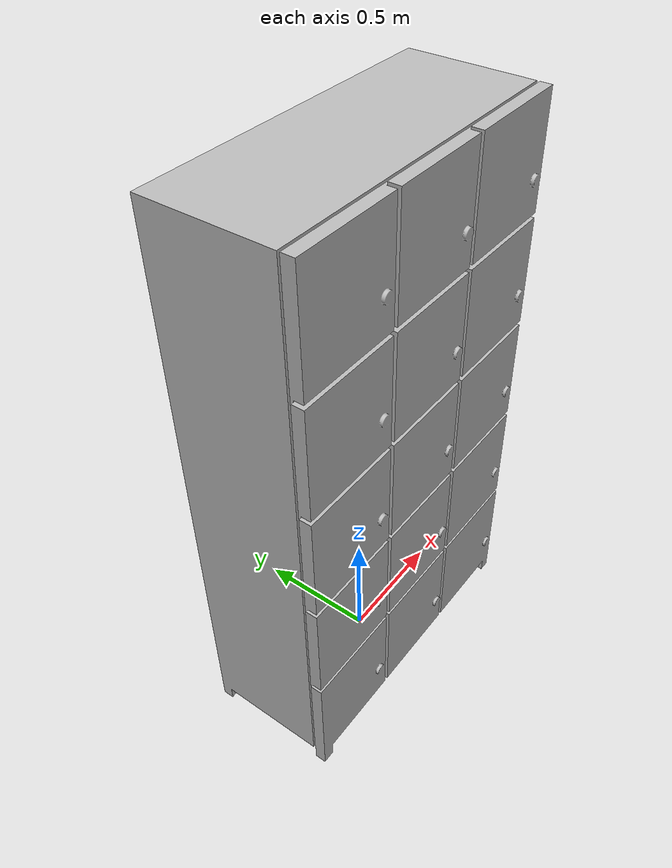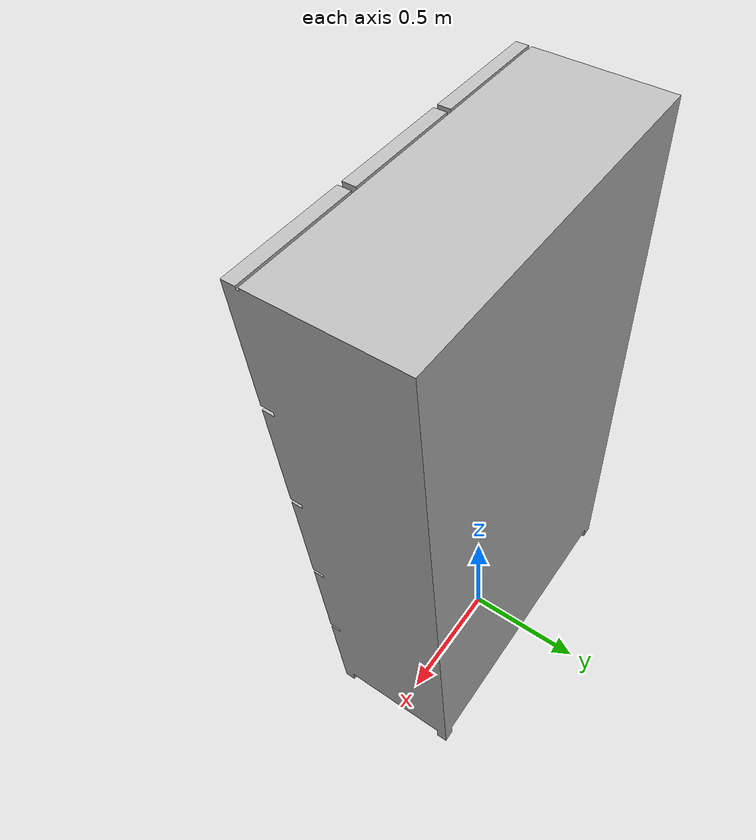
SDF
<?xml version='1.0'?>
<sdf version='1.7'>
  <model name='locker'>
    <link name='link_0'>
      <pose>0 0 0 0 -0 0</pose>
      <gravity>1</gravity>
      <visual name='visual'>
        <pose>0 0 0 0 -0 0</pose>
        <geometry>
          <mesh>
            <uri>model://locker/meshes/locker.dae</uri>
            <scale>0.9 0.9 0.9</scale>
          </mesh>
        </geometry>
        <transparency>0</transparency>
        <cast_shadows>0</cast_shadows>
      </visual>
      <collision name='collision'>
        <pose>0 0 0 0 0 0</pose>
        <geometry>
          <mesh>
            <uri>model://locker/meshes/locker.dae</uri>
            <scale>0.9 0.9 0.9</scale>
          </mesh>
        </geometry>
      </collision>
    </link>
    <static>1</static>
  </model>
</sdf>
